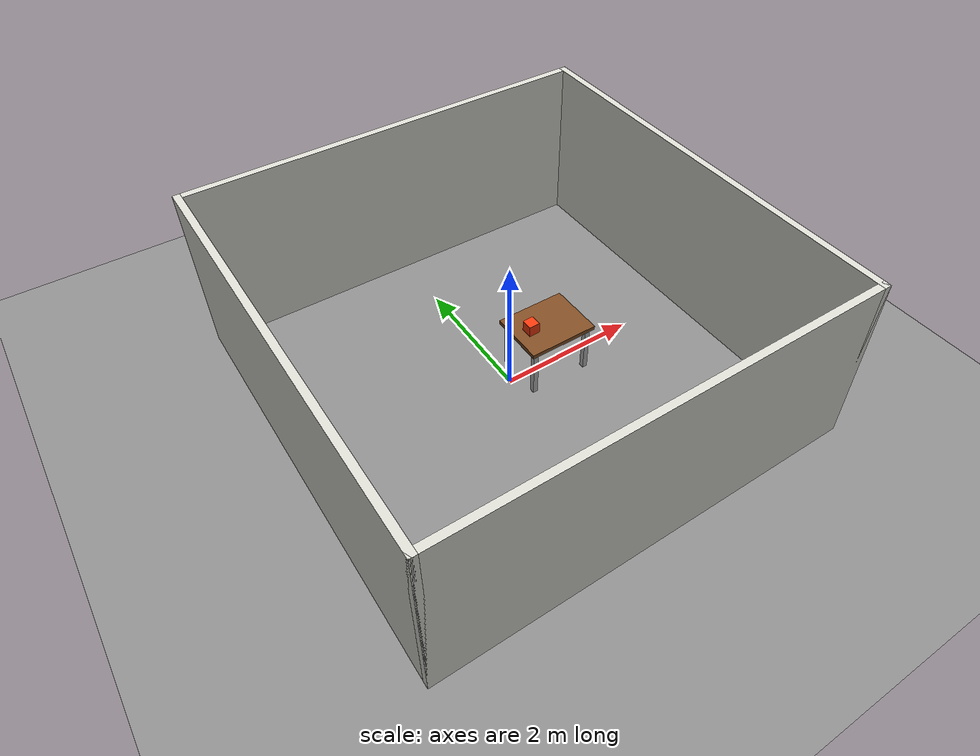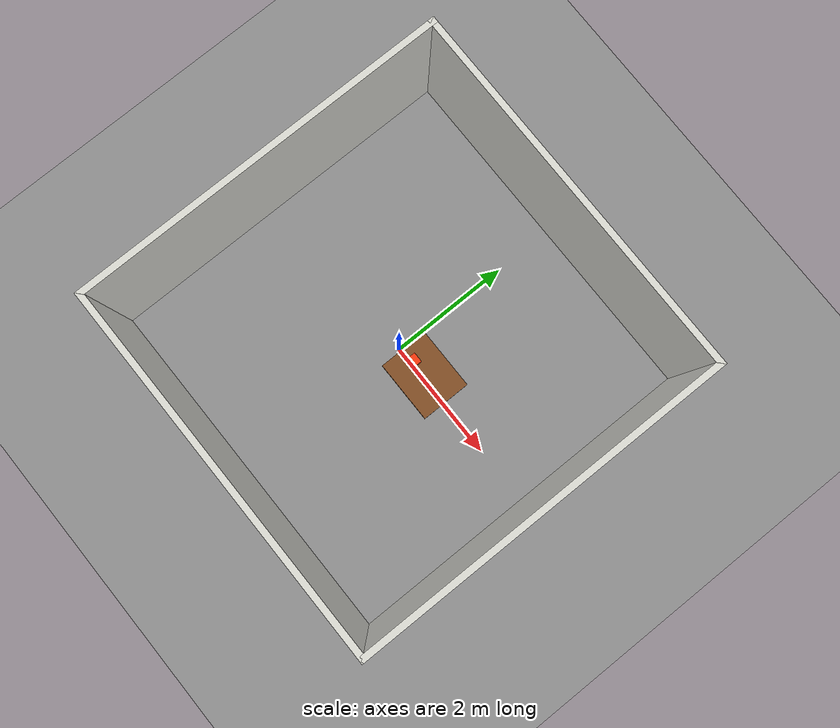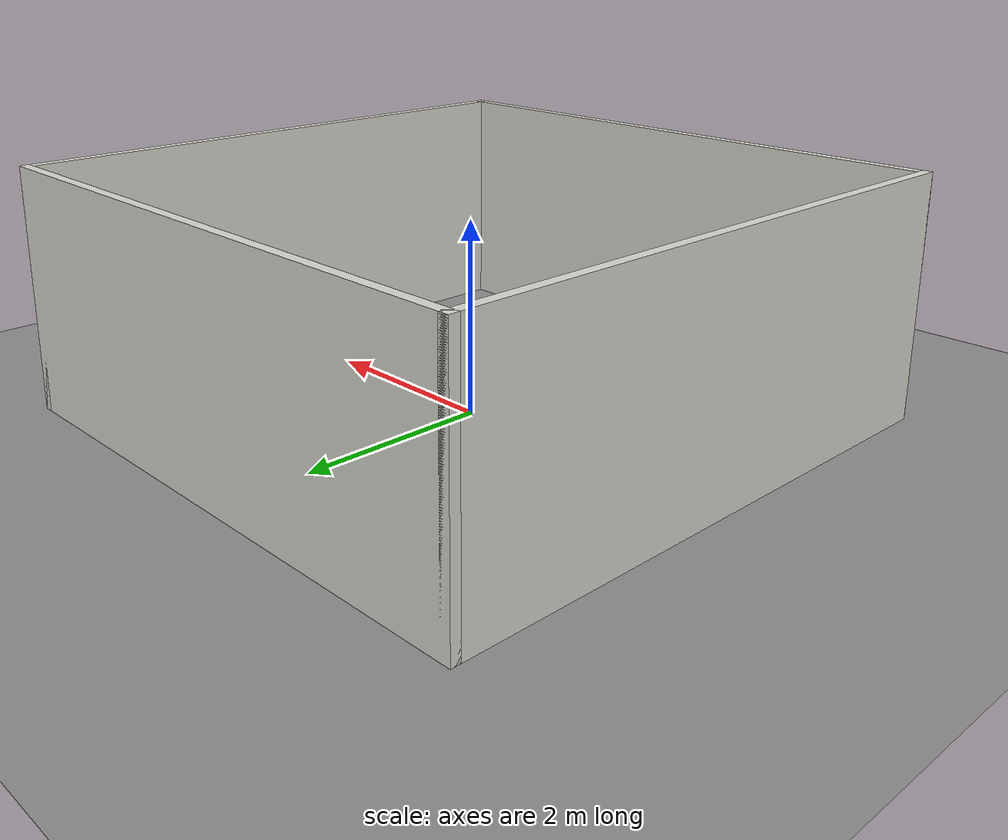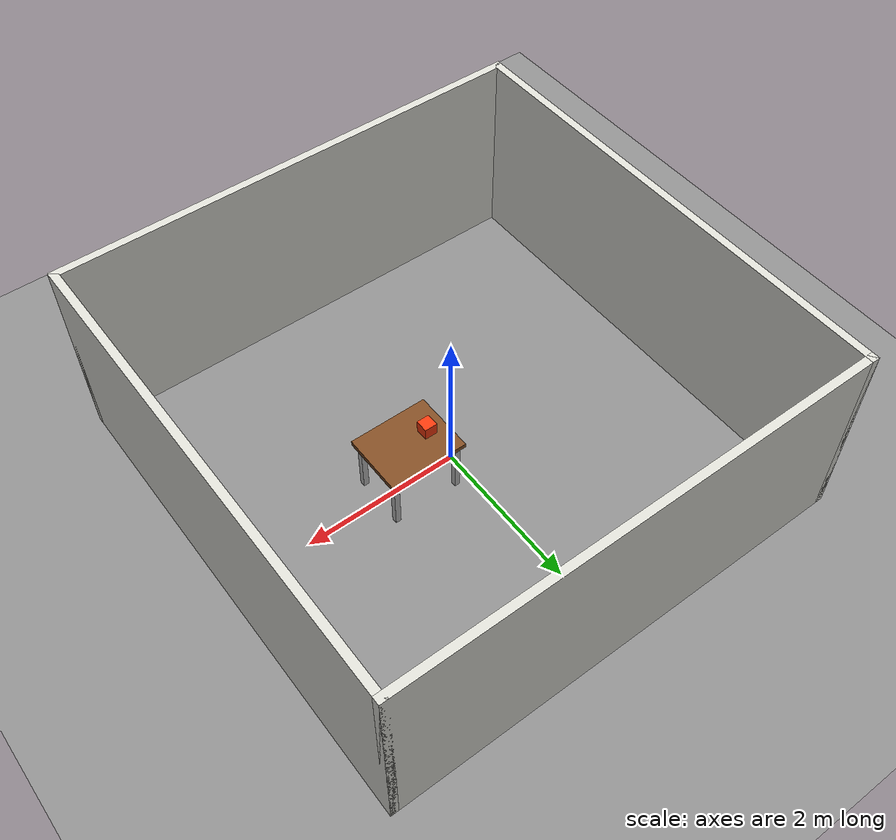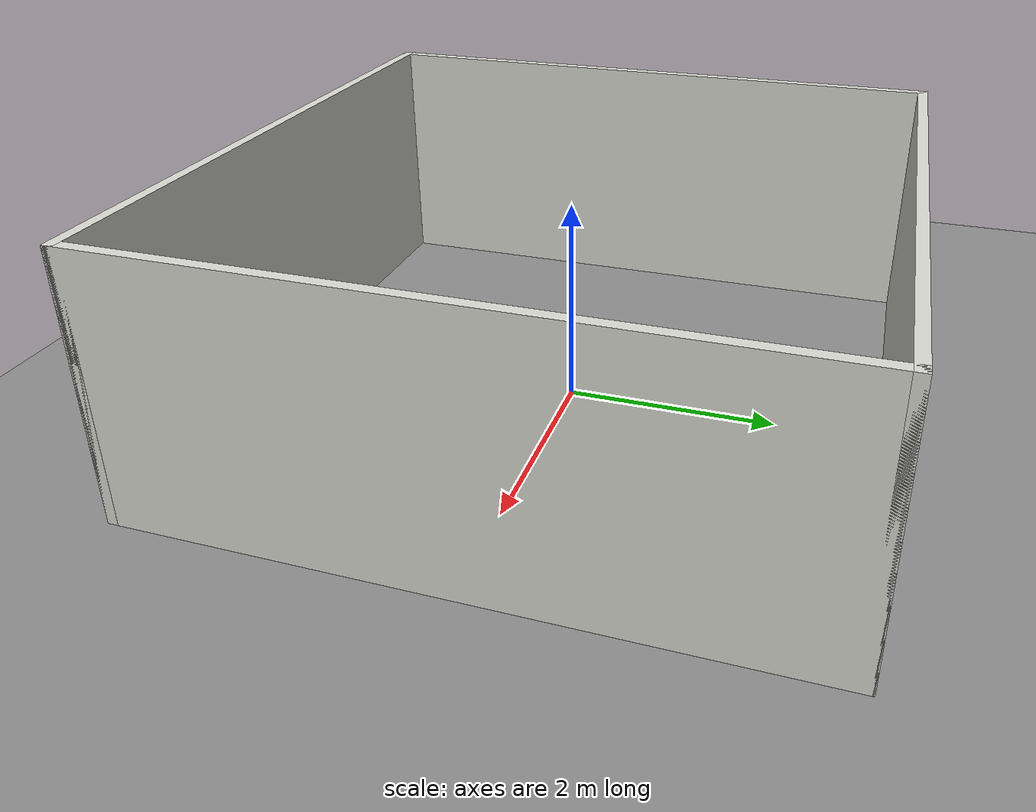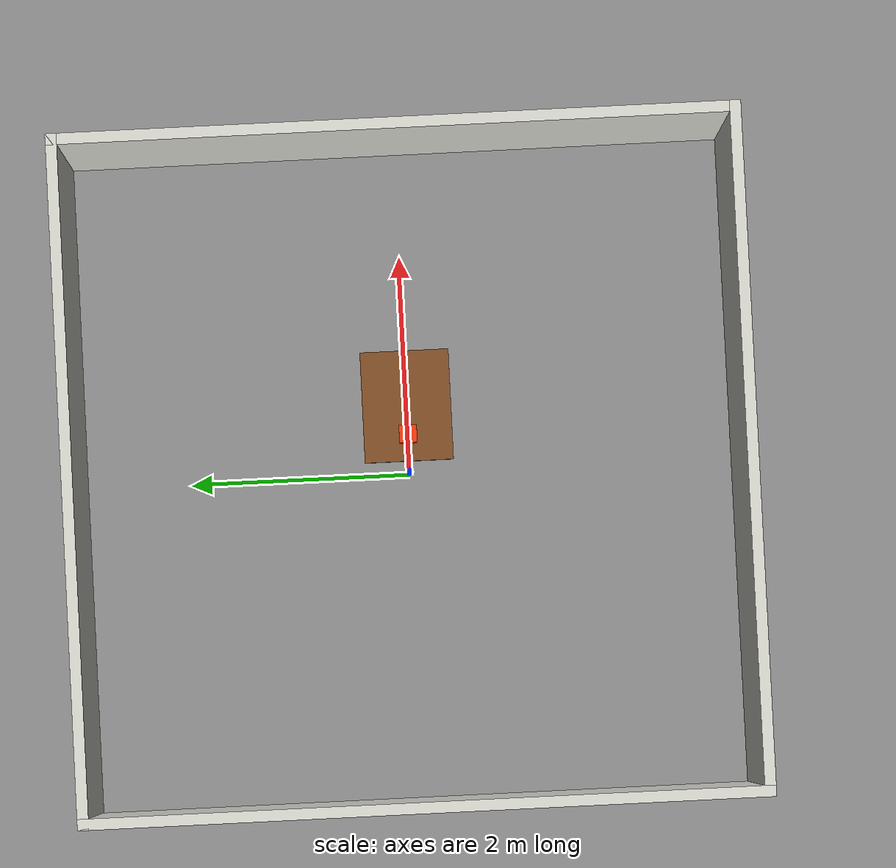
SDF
<?xml version="1.0" ?>
<sdf version="1.9">
  <world name="g1_world">
    <physics name="1ms" type="ignored">
      <max_step_size>0.001</max_step_size>
      <real_time_factor>1.0</real_time_factor>
    </physics>

    <plugin filename="gz-sim-physics-system" name="gz::sim::systems::Physics" />
    <plugin filename="gz-sim-user-commands-system" name="gz::sim::systems::UserCommands" />
    <plugin filename="gz-sim-scene-broadcaster-system" name="gz::sim::systems::SceneBroadcaster" />
    <plugin filename="gz-sim-sensors-system" name="gz::sim::systems::Sensors">
      <render_engine>ogre2</render_engine>
    </plugin>
    <plugin filename="gz-sim-imu-system" name="gz::sim::systems::Imu" />

    <gravity>0 0 -9.8</gravity>
    <scene>
      <ambient>0.35 0.35 0.35 1</ambient>
      <background>0.75 0.8 0.9 1</background>
      <shadows>true</shadows>
    </scene>

    <light type="directional" name="sun">
      <cast_shadows>true</cast_shadows>
      <pose>0 0 10 0 0 0</pose>
      <diffuse>0.8 0.8 0.8 1</diffuse>
      <specular>0.2 0.2 0.2 1</specular>
      <attenuation><range>1000</range><constant>0.9</constant><linear>0.01</linear><quadratic>0.001</quadratic></attenuation>
      <direction>-0.5 0.3 -1</direction>
    </light>

    <model name="ground_plane">
      <static>true</static>
      <link name="link">
        <collision name="collision"><geometry><plane><normal>0 0 1</normal><size>100 100</size></plane></geometry></collision>
        <visual name="visual"><geometry><plane><normal>0 0 1</normal><size>100 100</size></plane></geometry><material><ambient>0.45 0.45 0.45 1</ambient><diffuse>0.55 0.55 0.55 1</diffuse></material></visual>
      </link>
    </model>

    <!-- A bounded navigation area gives the planar Mid-360 scan stable
         geometry in every direction and makes the generated SLAM map useful
         immediately after startup. -->
    <model name="navigation_walls">
      <static>true</static>
      <link name="link">
        <visual name="north_visual"><pose>0 3 1.25 0 0 0</pose><geometry><box><size>6.1 0.1 2.5</size></box></geometry><material><ambient>0.75 0.75 0.72 1</ambient><diffuse>0.85 0.85 0.82 1</diffuse></material></visual>
        <collision name="north_collision"><pose>0 3 1.25 0 0 0</pose><geometry><box><size>6.1 0.1 2.5</size></box></geometry></collision>
        <visual name="south_visual"><pose>0 -3 1.25 0 0 0</pose><geometry><box><size>6.1 0.1 2.5</size></box></geometry><material><ambient>0.75 0.75 0.72 1</ambient><diffuse>0.85 0.85 0.82 1</diffuse></material></visual>
        <collision name="south_collision"><pose>0 -3 1.25 0 0 0</pose><geometry><box><size>6.1 0.1 2.5</size></box></geometry></collision>
        <visual name="east_visual"><pose>3 0 1.25 0 0 0</pose><geometry><box><size>0.1 6.1 2.5</size></box></geometry><material><ambient>0.75 0.75 0.72 1</ambient><diffuse>0.85 0.85 0.82 1</diffuse></material></visual>
        <collision name="east_collision"><pose>3 0 1.25 0 0 0</pose><geometry><box><size>0.1 6.1 2.5</size></box></geometry></collision>
        <visual name="west_visual"><pose>-3 0 1.25 0 0 0</pose><geometry><box><size>0.1 6.1 2.5</size></box></geometry><material><ambient>0.75 0.75 0.72 1</ambient><diffuse>0.85 0.85 0.82 1</diffuse></material></visual>
        <collision name="west_collision"><pose>-3 0 1.25 0 0 0</pose><geometry><box><size>0.1 6.1 2.5</size></box></geometry></collision>
      </link>
    </model>

    <model name="table">
      <static>true</static>
      <link name="link">
        <visual name="top"><pose>0.60 0 0.75 0 0 0</pose><geometry><box><size>1.00 0.80 0.06</size></box></geometry><material><ambient>0.38 0.22 0.10 1</ambient><diffuse>0.50 0.30 0.14 1</diffuse></material></visual>
        <collision name="top"><pose>0.60 0 0.75 0 0 0</pose><geometry><box><size>1.00 0.80 0.06</size></box></geometry></collision>
        <visual name="leg_fl"><pose>0.18 0.32 0.36 0 0 0</pose><geometry><box><size>0.07 0.07 0.72</size></box></geometry></visual>
        <visual name="leg_fr"><pose>0.18 -0.32 0.36 0 0 0</pose><geometry><box><size>0.07 0.07 0.72</size></box></geometry></visual>
        <visual name="leg_rl"><pose>1.02 0.32 0.36 0 0 0</pose><geometry><box><size>0.07 0.07 0.72</size></box></geometry></visual>
        <visual name="leg_rr"><pose>1.02 -0.32 0.36 0 0 0</pose><geometry><box><size>0.07 0.07 0.72</size></box></geometry></visual>
        <collision name="leg_fl"><pose>0.18 0.32 0.36 0 0 0</pose><geometry><box><size>0.07 0.07 0.72</size></box></geometry></collision>
        <collision name="leg_fr"><pose>0.18 -0.32 0.36 0 0 0</pose><geometry><box><size>0.07 0.07 0.72</size></box></geometry></collision>
        <collision name="leg_rl"><pose>1.02 0.32 0.36 0 0 0</pose><geometry><box><size>0.07 0.07 0.72</size></box></geometry></collision>
        <collision name="leg_rr"><pose>1.02 -0.32 0.36 0 0 0</pose><geometry><box><size>0.07 0.07 0.72</size></box></geometry></collision>
      </link>
    </model>

    <model name="pickup_box">
      <pose>0.34 0 0.86 0 0 0</pose>
      <link name="link">
        <gravity>false</gravity>
        <inertial><mass>0.25</mass><inertia><ixx>0.0011</ixx><iyy>0.0011</iyy><izz>0.0011</izz></inertia></inertial>
        <collision name="collision"><geometry><box><size>0.16 0.16 0.16</size></box></geometry></collision>
        <visual name="visual"><geometry><box><size>0.16 0.16 0.16</size></box></geometry><material><ambient>0.85 0.18 0.04 1</ambient><diffuse>0.95 0.22 0.05 1</diffuse></material></visual>
      </link>
    </model>
  </world>
</sdf>
